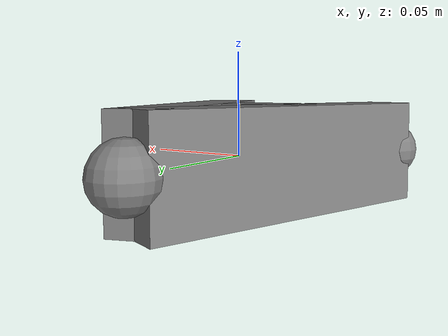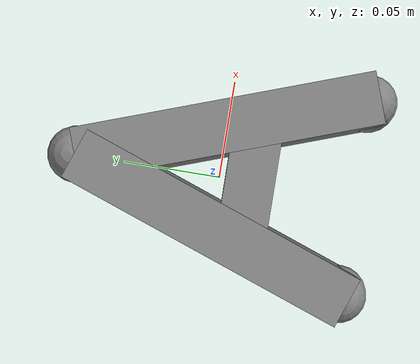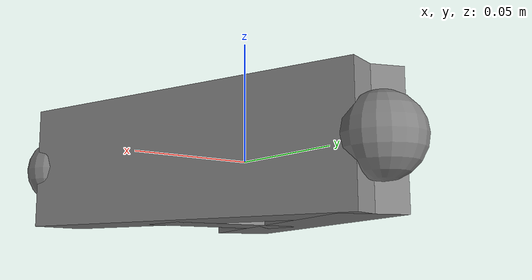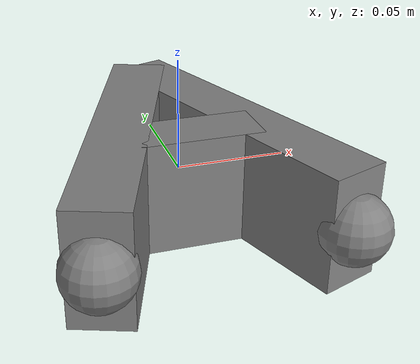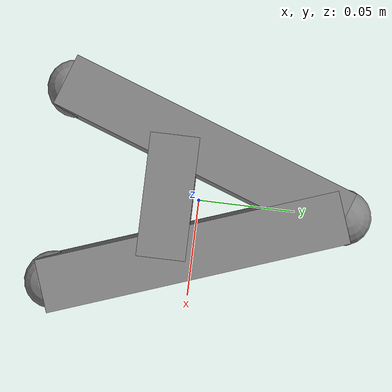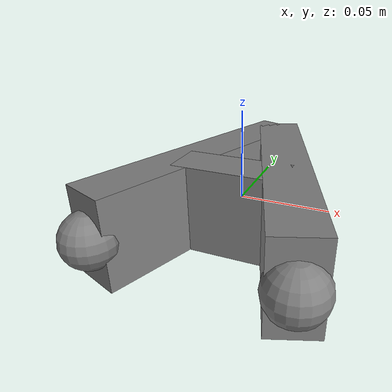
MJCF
<mujoco model="shape_a">
  <worldbody>
    <body name="shape">
      <geom name="leg_l" type="box" size="0.013 0.075 0.025"
        pos="-0.025 0.0 0.0" quat="0.9853 0 0 -0.1710" />
      <geom name="leg_r" type="box" size="0.013 0.075 0.025"
        pos="0.025 0.0 0.0" quat="0.9853 0 0 0.1710" />
      <geom name="crossbar" type="box" size="0.03 0.012 0.025"
        pos="0.0 -0.015 0.0" />
      <site name="attractor_site1" pos="0.0 0.075 0.0" size="0.015" />
      <site name="attractor_site2" pos="-0.05 -0.07 0.0" size="0.015" />
      <site name="attractor_site3" pos="0.05 -0.07 0.0" size="0.015" />
    </body>
  </worldbody>
</mujoco>
